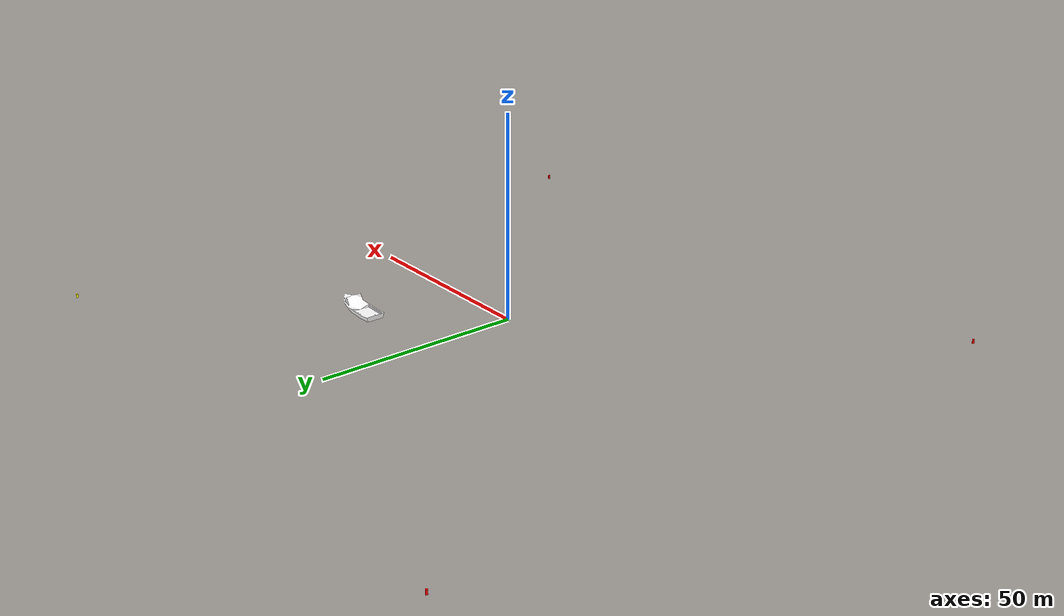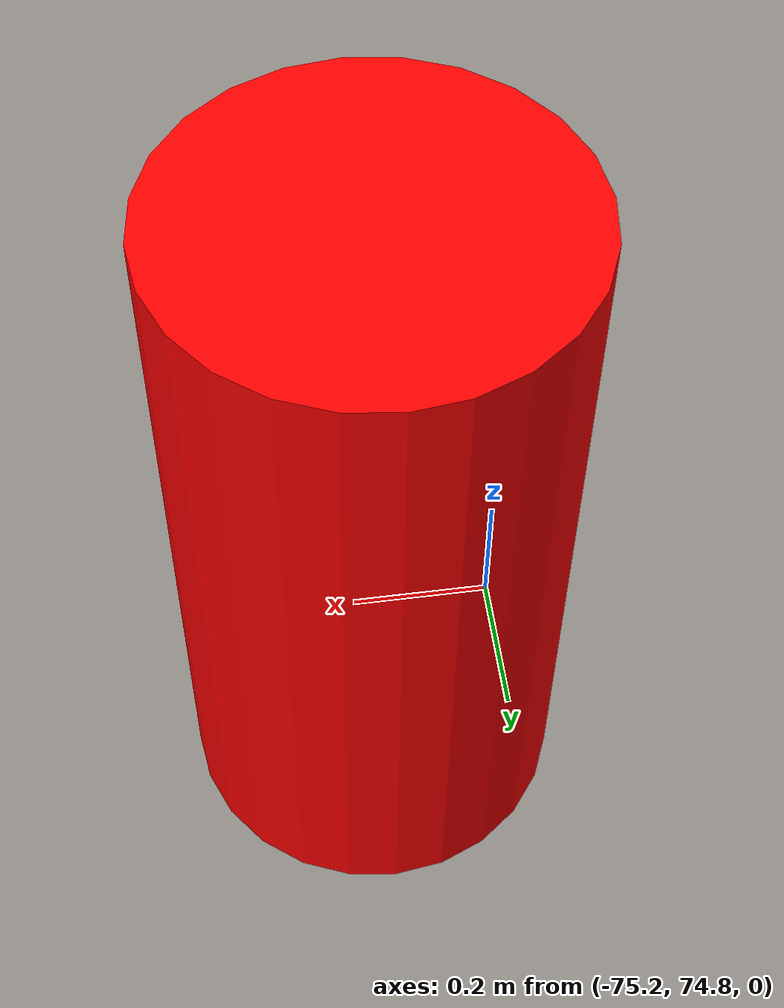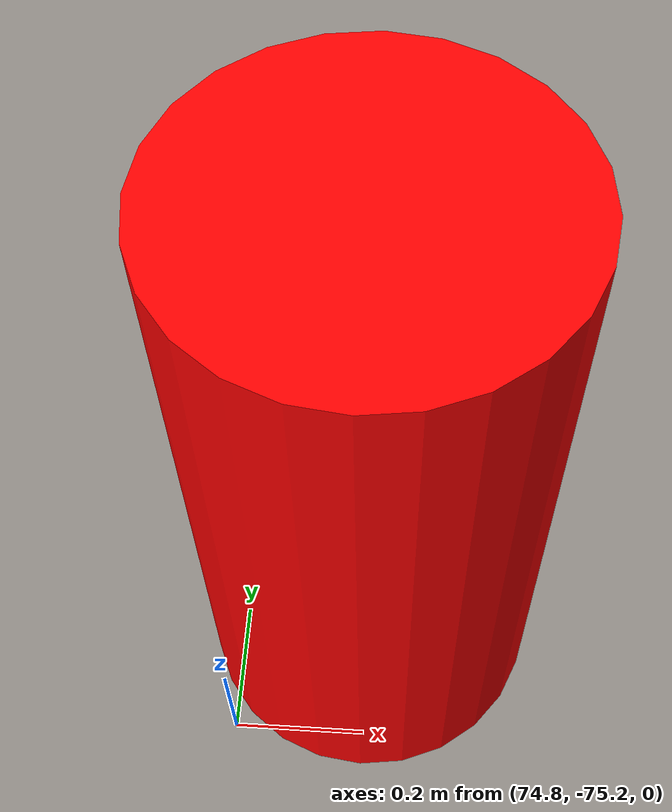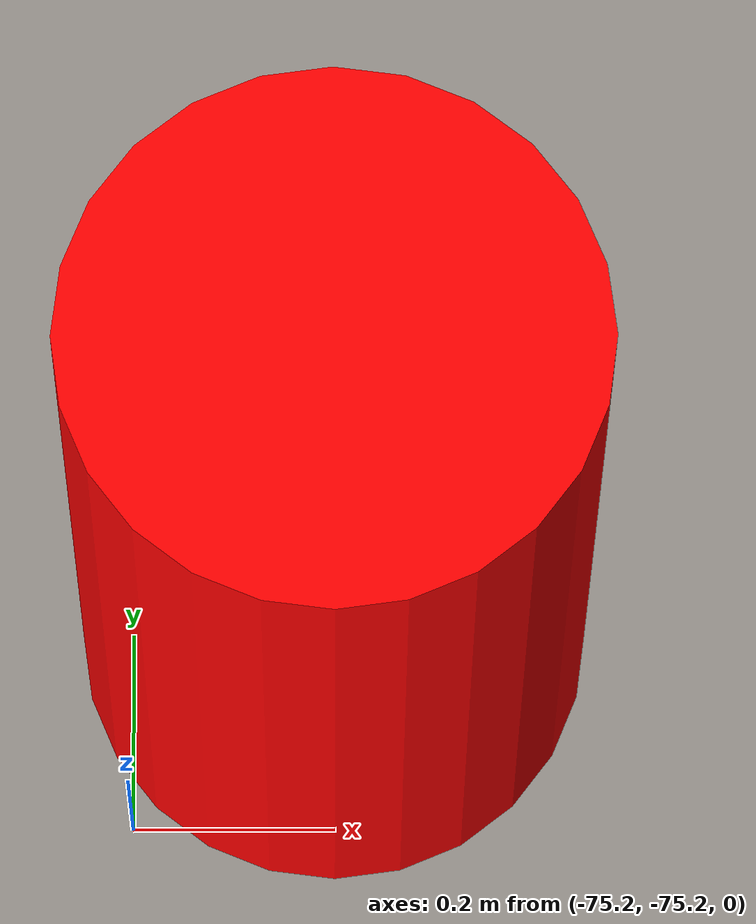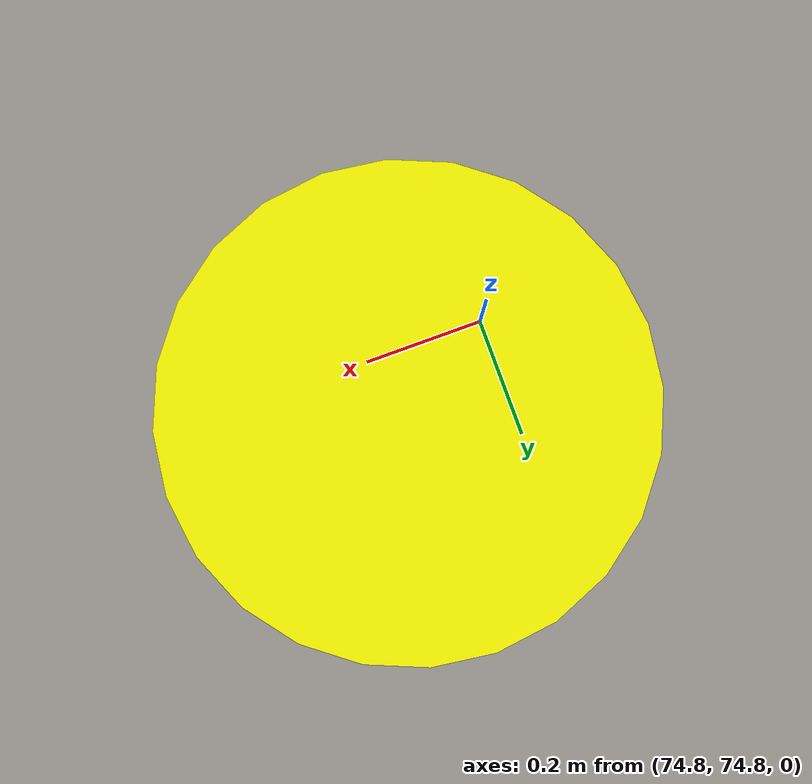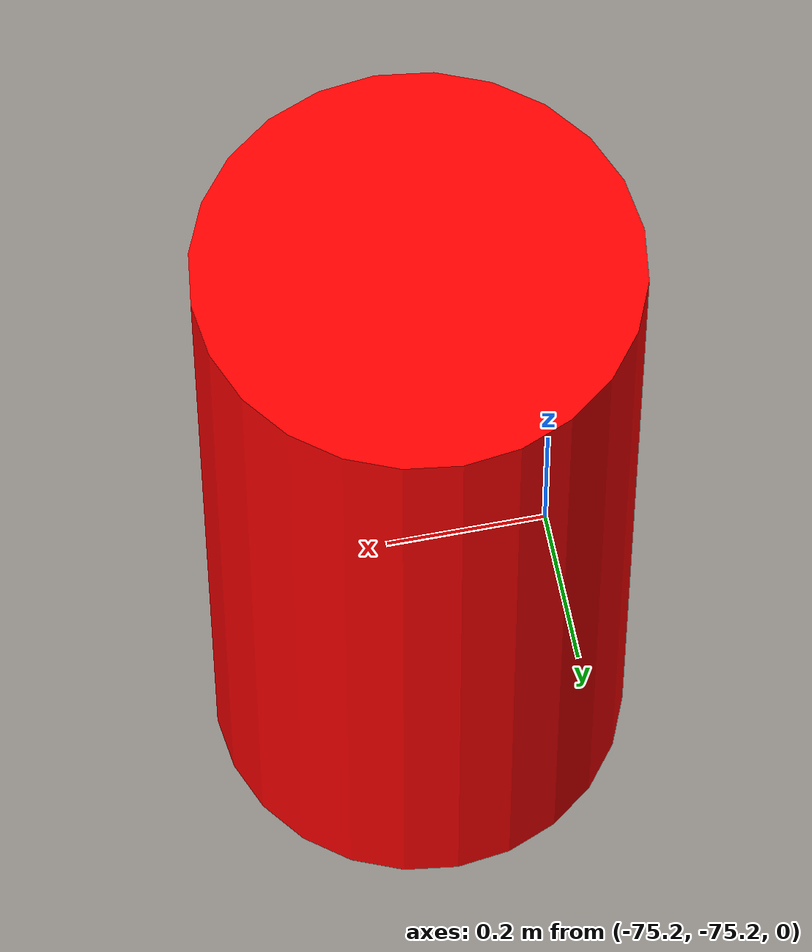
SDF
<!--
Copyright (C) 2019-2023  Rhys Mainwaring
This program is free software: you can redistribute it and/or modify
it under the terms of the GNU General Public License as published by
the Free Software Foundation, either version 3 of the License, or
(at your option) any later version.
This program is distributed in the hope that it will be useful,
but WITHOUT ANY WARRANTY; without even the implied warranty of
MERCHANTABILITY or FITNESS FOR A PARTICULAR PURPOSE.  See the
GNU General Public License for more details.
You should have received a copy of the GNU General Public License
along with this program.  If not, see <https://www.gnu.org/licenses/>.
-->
<sdf version="1.6">
 <world name="waves">
  <physics name="1ms" type="ignored">
   <max_step_size>0.001</max_step_size>
   <real_time_factor>1</real_time_factor>
  </physics>
  <plugin filename="gz-sim-physics-system" name="gz::sim::systems::Physics"/>
  <plugin filename="gz-sim-sensors-system" name="gz::sim::systems::Sensors">
   <render_engine>ogre2</render_engine>
   <background_color>0.8 0.8 0.8</background_color>
  </plugin>
  <plugin filename="gz-sim-scene-broadcaster-system" name="gz::sim::systems::SceneBroadcaster"/>
  <plugin filename="gz-sim-user-commands-system" name="gz::sim::systems::UserCommands"/>
  <plugin filename="gz-sim-imu-system" name="gz::sim::systems::Imu"/>
  <plugin filename="gz-sim-navsat-system" name="gz::sim::systems::NavSat"/>
  <plugin filename="gz-sim-wind-effects-system" name="gz::sim::systems::WindEffects">
   <force_approximation_scaling_factor>0.1</force_approximation_scaling_factor>
  </plugin>
  <plugin filename="gz-sim-magnetometer-system" name="gz::sim::systems::Magnetometer"/>
  <plugin filename="asv_sim2-anemometer-system" name="gz::sim::systems::Anemometer"/>
  <plugin filename="asv_sim2-wind-system" name="gz::sim::systems::Wind"><topic>/wind</topic></plugin>
  <scene><ambient>1.0 1.0 1.0</ambient><background>0.8 0.8 0.8</background></scene>
  <spherical_coordinates>
   <latitude_deg>36.603989</latitude_deg>
   <longitude_deg>-121.881621</longitude_deg>
   <elevation>10.0</elevation>
   <heading_deg>0</heading_deg>
   <surface_model>EARTH_WGS84</surface_model>
  </spherical_coordinates>
  <light type="directional" name="sun">
   <pose>0 0 10 0 0 0</pose>
   <diffuse>0.8 0.8 0.8 1</diffuse>
   <specular>0.6 0.6 0.6 1</specular>
   <direction>-0.5 0.1 -0.9</direction>
  </light>
  <wind><linear_velocity>0 -10 0</linear_velocity></wind>
  <model name="buoy_wp1">
   <pose>-75 -75 0.5 0 0 0</pose>
   <enable_wind>true</enable_wind>
   <link name="base_link">
    <inertial>
     <mass>5</mass>
     <inertia>
      <ixx>0.494791667</ixx>
      <ixy>0</ixy>
      <ixz>0</ixz>
      <iyy>0.494791667</iyy>
      <iyz>0</iyz>
      <izz>0.15625</izz>
     </inertia>
    </inertial>
    <collision name="collision">
     <geometry><cylinder><radius>0.25</radius><length>1.0</length></cylinder></geometry>
    </collision>
    <visual name="visual">
     <geometry><cylinder><radius>0.25</radius><length>1.0</length></cylinder></geometry>
     <material><ambient>1 0 0 1</ambient><diffuse>1 0 0 1</diffuse><specular>0.1 0.1 0.1 1</specular></material>
    </visual>
    <sensor name="navsat_sensor" type="navsat"><always_on>1</always_on><update_rate>30</update_rate></sensor>
   </link>
   <link name="bridle_link">
    <pose>0 0 -0.5 0 0 0</pose>
    <inertial>
     <mass>10</mass>
     <inertia><ixx>0.01000</ixx><ixy>0</ixy><ixz>0</ixz><iyy>0.01000</iyy><iyz>0</iyz><izz>0.01000</izz></inertia>
    </inertial>
    <collision name="collision"><geometry><sphere><radius>0.1</radius></sphere></geometry></collision>
    <visual name="visual">
     <geometry><sphere><radius>0.1</radius></sphere></geometry>
     <material>
      <ambient>0.5 0.5 0.5 1</ambient>
      <diffuse>0.5 0.5 0.5 1</diffuse>
      <specular>0.1 0.1 0.1 1</specular>
     </material>
    </visual>
   </link>
   <joint name="bridle_joint" type="revolute">
    <child>bridle_link</child>
    <parent>base_link</parent>
    <axis>
     <xyz>0 0 1</xyz>
     <limit><lower>0</lower><upper>0</upper></limit>
     <dynamics><damping>1.0</damping></dynamics>
    </axis>
   </joint>
   <plugin filename="gz-waves1-hydrodynamics-system" name="gz::sim::systems::Hydrodynamics">
    <enable>buoy_wp1::base_link</enable>
   </plugin>
   <plugin filename="asv_sim2-mooring-system" name="gz::sim::systems::Mooring">
    <link_name>bridle_link</link_name>
    <anchor_position>-75 -75 -10</anchor_position>
    <chain_length>15.0</chain_length>
    <chain_mass_per_metre>1.0</chain_mass_per_metre>
   </plugin>
  </model>
  <model name="buoy_wp2">
   <pose>75 -75 0.5 0 0 0</pose>
   <enable_wind>true</enable_wind>
   <link name="base_link">
    <inertial>
     <mass>5</mass>
     <inertia>
      <ixx>0.494791667</ixx>
      <ixy>0</ixy>
      <ixz>0</ixz>
      <iyy>0.494791667</iyy>
      <iyz>0</iyz>
      <izz>0.15625</izz>
     </inertia>
    </inertial>
    <collision name="collision">
     <geometry><cylinder><radius>0.25</radius><length>1.0</length></cylinder></geometry>
    </collision>
    <visual name="visual">
     <geometry><cylinder><radius>0.25</radius><length>1.0</length></cylinder></geometry>
     <material><ambient>1 0 0 1</ambient><diffuse>1 0 0 1</diffuse><specular>0.1 0.1 0.1 1</specular></material>
    </visual>
    <sensor name="navsat_sensor" type="navsat"><always_on>1</always_on><update_rate>30</update_rate></sensor>
   </link>
   <link name="bridle_link">
    <pose>0 0 -0.5 0 0 0</pose>
    <inertial>
     <mass>10</mass>
     <inertia><ixx>0.01000</ixx><ixy>0</ixy><ixz>0</ixz><iyy>0.01000</iyy><iyz>0</iyz><izz>0.01000</izz></inertia>
    </inertial>
    <collision name="collision"><geometry><sphere><radius>0.1</radius></sphere></geometry></collision>
    <visual name="visual">
     <geometry><sphere><radius>0.1</radius></sphere></geometry>
     <material>
      <ambient>0.5 0.5 0.5 1</ambient>
      <diffuse>0.5 0.5 0.5 1</diffuse>
      <specular>0.1 0.1 0.1 1</specular>
     </material>
    </visual>
   </link>
   <joint name="bridle_joint" type="revolute">
    <child>bridle_link</child>
    <parent>base_link</parent>
    <axis>
     <xyz>0 0 1</xyz>
     <limit><lower>0</lower><upper>0</upper></limit>
     <dynamics><damping>1.0</damping></dynamics>
    </axis>
   </joint>
   <plugin filename="gz-waves1-hydrodynamics-system" name="gz::sim::systems::Hydrodynamics">
    <enable>buoy_wp2::base_link</enable>
   </plugin>
   <plugin filename="asv_sim2-mooring-system" name="gz::sim::systems::Mooring">
    <link_name>bridle_link</link_name>
    <anchor_position>75 -75 -10</anchor_position>
    <chain_length>15.0</chain_length>
    <chain_mass_per_metre>1.0</chain_mass_per_metre>
   </plugin>
  </model>
  <model name="buoy_wp3">
   <pose>-75 75 0.5 0 0 0</pose>
   <enable_wind>true</enable_wind>
   <link name="base_link">
    <inertial>
     <mass>5</mass>
     <inertia>
      <ixx>0.494791667</ixx>
      <ixy>0</ixy>
      <ixz>0</ixz>
      <iyy>0.494791667</iyy>
      <iyz>0</iyz>
      <izz>0.15625</izz>
     </inertia>
    </inertial>
    <collision name="collision">
     <geometry><cylinder><radius>0.25</radius><length>1.0</length></cylinder></geometry>
    </collision>
    <visual name="visual">
     <geometry><cylinder><radius>0.25</radius><length>1.0</length></cylinder></geometry>
     <material><ambient>1 0 0 1</ambient><diffuse>1 0 0 1</diffuse><specular>0.1 0.1 0.1 1</specular></material>
    </visual>
    <sensor name="navsat_sensor" type="navsat"><always_on>1</always_on><update_rate>30</update_rate></sensor>
   </link>
   <link name="bridle_link">
    <pose>0 0 -0.5 0 0 0</pose>
    <inertial>
     <mass>10</mass>
     <inertia><ixx>0.01000</ixx><ixy>0</ixy><ixz>0</ixz><iyy>0.01000</iyy><iyz>0</iyz><izz>0.01000</izz></inertia>
    </inertial>
    <collision name="collision"><geometry><sphere><radius>0.1</radius></sphere></geometry></collision>
    <visual name="visual">
     <geometry><sphere><radius>0.1</radius></sphere></geometry>
     <material>
      <ambient>0.5 0.5 0.5 1</ambient>
      <diffuse>0.5 0.5 0.5 1</diffuse>
      <specular>0.1 0.1 0.1 1</specular>
     </material>
    </visual>
   </link>
   <joint name="bridle_joint" type="revolute">
    <child>bridle_link</child>
    <parent>base_link</parent>
    <axis>
     <xyz>0 0 1</xyz>
     <limit><lower>0</lower><upper>0</upper></limit>
     <dynamics><damping>1.0</damping></dynamics>
    </axis>
   </joint>
   <plugin filename="gz-waves1-hydrodynamics-system" name="gz::sim::systems::Hydrodynamics">
    <enable>buoy_wp3::base_link</enable>
   </plugin>
   <plugin filename="asv_sim2-mooring-system" name="gz::sim::systems::Mooring">
    <link_name>bridle_link</link_name>
    <anchor_position>-75 75 -10</anchor_position>
    <chain_length>15.0</chain_length>
    <chain_mass_per_metre>1.0</chain_mass_per_metre>
   </plugin>
  </model>
  <model name="buoy_wp4">
   <pose>75 75 0.5 0 0 0</pose>
   <enable_wind>true</enable_wind>
   <link name="base_link">
    <inertial>
     <mass>5</mass>
     <inertia>
      <ixx>0.494791667</ixx>
      <ixy>0</ixy>
      <ixz>0</ixz>
      <iyy>0.494791667</iyy>
      <iyz>0</iyz>
      <izz>0.15625</izz>
     </inertia>
    </inertial>
    <collision name="collision">
     <geometry><cylinder><radius>0.25</radius><length>1.0</length></cylinder></geometry>
    </collision>
    <visual name="visual">
     <geometry><cylinder><radius>0.25</radius><length>1.0</length></cylinder></geometry>
     <material><ambient>1 1 0 1</ambient><diffuse>1 1 0 1</diffuse><specular>0.1 0.1 0.1 1</specular></material>
    </visual>
    <sensor name="navsat_sensor" type="navsat"><always_on>1</always_on><update_rate>30</update_rate></sensor>
   </link>
   <link name="bridle_link">
    <pose>0 0 -0.5 0 0 0</pose>
    <inertial>
     <mass>10</mass>
     <inertia><ixx>0.01000</ixx><ixy>0</ixy><ixz>0</ixz><iyy>0.01000</iyy><iyz>0</iyz><izz>0.01000</izz></inertia>
    </inertial>
    <collision name="collision"><geometry><sphere><radius>0.1</radius></sphere></geometry></collision>
    <visual name="visual">
     <geometry><sphere><radius>0.1</radius></sphere></geometry>
     <material>
      <ambient>0.5 0.5 0.5 1</ambient>
      <diffuse>0.5 0.5 0.5 1</diffuse>
      <specular>0.1 0.1 0.1 1</specular>
     </material>
    </visual>
   </link>
   <joint name="bridle_joint" type="revolute">
    <child>bridle_link</child>
    <parent>base_link</parent>
    <axis>
     <xyz>0 0 1</xyz>
     <limit><lower>0</lower><upper>0</upper></limit>
     <dynamics><damping>1.0</damping></dynamics>
    </axis>
   </joint>
   <plugin filename="gz-waves1-hydrodynamics-system" name="gz::sim::systems::Hydrodynamics">
    <enable>buoy_wp4::base_link</enable>
   </plugin>
   <plugin filename="asv_sim2-mooring-system" name="gz::sim::systems::Mooring">
    <link_name>bridle_link</link_name>
    <anchor_position>75 75 -10</anchor_position>
    <chain_length>15.0</chain_length>
    <chain_mass_per_metre>1.0</chain_mass_per_metre>
   </plugin>
  </model>
  <include>
   <static>false</static>
   <name>vessel_a_mod</name>
   <pose>25 25 0.3 0 0.0 0.0</pose>
   <uri>model://vessel_a_mod</uri>
   <plugin filename="gz-sim-trajectory-follower-system" name="gz::sim::systems::TrajectoryFollower">
    <link_name>link</link_name>
    <loop>true</loop>
    <force>5000</force>
    <torque>1000</torque>
    <waypoints><waypoint>25 50</waypoint><waypoint>25 -50</waypoint></waypoints>
   </plugin>
  </include>
 </world>
</sdf>

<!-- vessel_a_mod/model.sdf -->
<sdf version="1.6">
  <model name="vessel_a_mod">
    <static>false</static>
    <link name="link">
      <enable_wind>true</enable_wind>
      <inertial>
        <mass>1500.0</mass>
        <inertia>
          <ixx>3625</ixx>
          <ixy>0.0</ixy>
          <ixz>0.0</ixz>
          <iyy>25000</iyy>
          <iyz>0.0</iyz>
          <izz>27625</izz>
        </inertia>
      </inertial>
      <visual name="visual">
        <pose>0 0 0 0 0 -1.5708</pose>
        <geometry>
          <mesh>
            <uri>meshes/Boat05.dae</uri>
          </mesh>
        </geometry>
        <material>
          <diffuse>1.0 1.0 1.0</diffuse>
          <specular>1.0 1.0 1.0</specular>
          <pbr>
            <metal>
              <albedo_map>materials/textures/Boat05_Albedo.jpg</albedo_map>
              <normal_map>materials/textures/Boat05_Normal.png</normal_map>
              <roughness_map>materials/textures/Boat05_Roughness.jpg</roughness_map>
              <metalness_map>materials/textures/Boat05_Metalness.png</metalness_map>
            </metal>
          </pbr>
        </material>
      </visual>
      <collision name="collision">
        <pose>0 0 0 0 0 -1.5708</pose>
        <geometry>
          <mesh>
          <scale>1 1 1</scale>
            <uri>model://vessel_a_mod/meshes/vessel_collision.dae</uri>
          </mesh>
        </geometry>
      </collision>
    </link>

          <!-- Hydrodynamics plugin -->
        <plugin
          filename="gz-waves1-hydrodynamics-system"
          name="gz::sim::systems::Hydrodynamics">

          <enable>vessel_a_mod::link::collision</enable>

          <hydrodynamics>
          <damping_on>1</damping_on>
          <viscous_drag_on>1</viscous_drag_on>
          <pressure_drag_on>1</pressure_drag_on>

          <!-- Linear and Angular Damping -->
          <cDampL1>1.0E-6</cDampL1>
          <cDampL2>1.0E-6</cDampL2>
          <cDampR1>1.0E-6</cDampR1>
          <cDampR2>1.0E-6</cDampR2>

          <!-- 'Pressure' Drag -->
          <cPDrag1>1.0E+2</cPDrag1>
          <cPDrag2>1.0E+2</cPDrag2>
          <fPDrag>0.4</fPDrag>
          <cSDrag1>1.0E+2</cSDrag1>
          <cSDrag2>1.0E+2</cSDrag2>
          <fSDrag>0.4</fSDrag>
          <vRDrag>1.0</vRDrag>
          </hydrodynamics>
          <markers>
            <update_rate>10</update_rate>
            <water_patch>0</water_patch>
            <waterline>0</waterline>
            <underwater_surface>0</underwater_surface>
          </markers>
        </plugin>
 </model>
</sdf>
